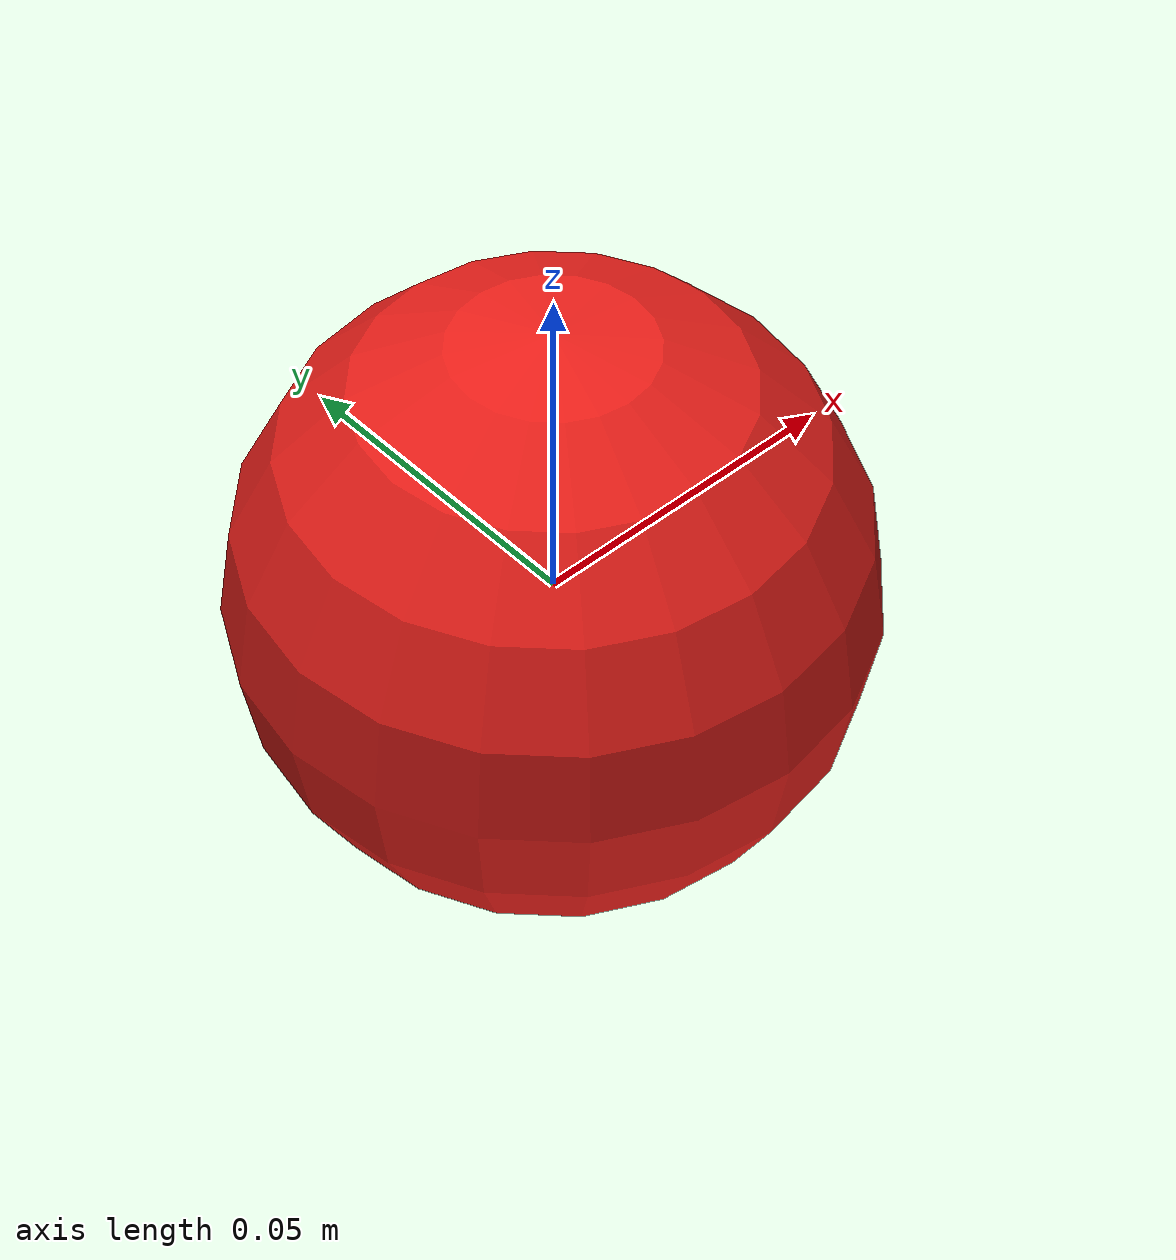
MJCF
<?xml version="1.0" encoding="UTF-8"?>
<!-- Color-only clean-room surrogate; wrapper changes visual RGBA by instance. -->
<mujoco model="libero_vlabench_perception_color_primitive">
  <worldbody>
    <body>
      <body name="object">
        <geom name="color_visual" type="sphere" group="1" contype="0" conaffinity="0"
              size="0.045" rgba="0.90 0.12 0.10 1"/>
        <geom name="color_collision" type="sphere" group="0" size="0.043"
              mass="0.08"/>
      </body>
      <site name="bottom_site" pos="0 0 -0.045" size="0.005" rgba="0 0 0 0"/>
      <site name="top_site" pos="0 0 0.045" size="0.005" rgba="0 0 0 0"/>
      <site name="horizontal_radius_site" pos="0.045 0 0" size="0.005" rgba="0 0 0 0"/>
    </body>
  </worldbody>
</mujoco>
